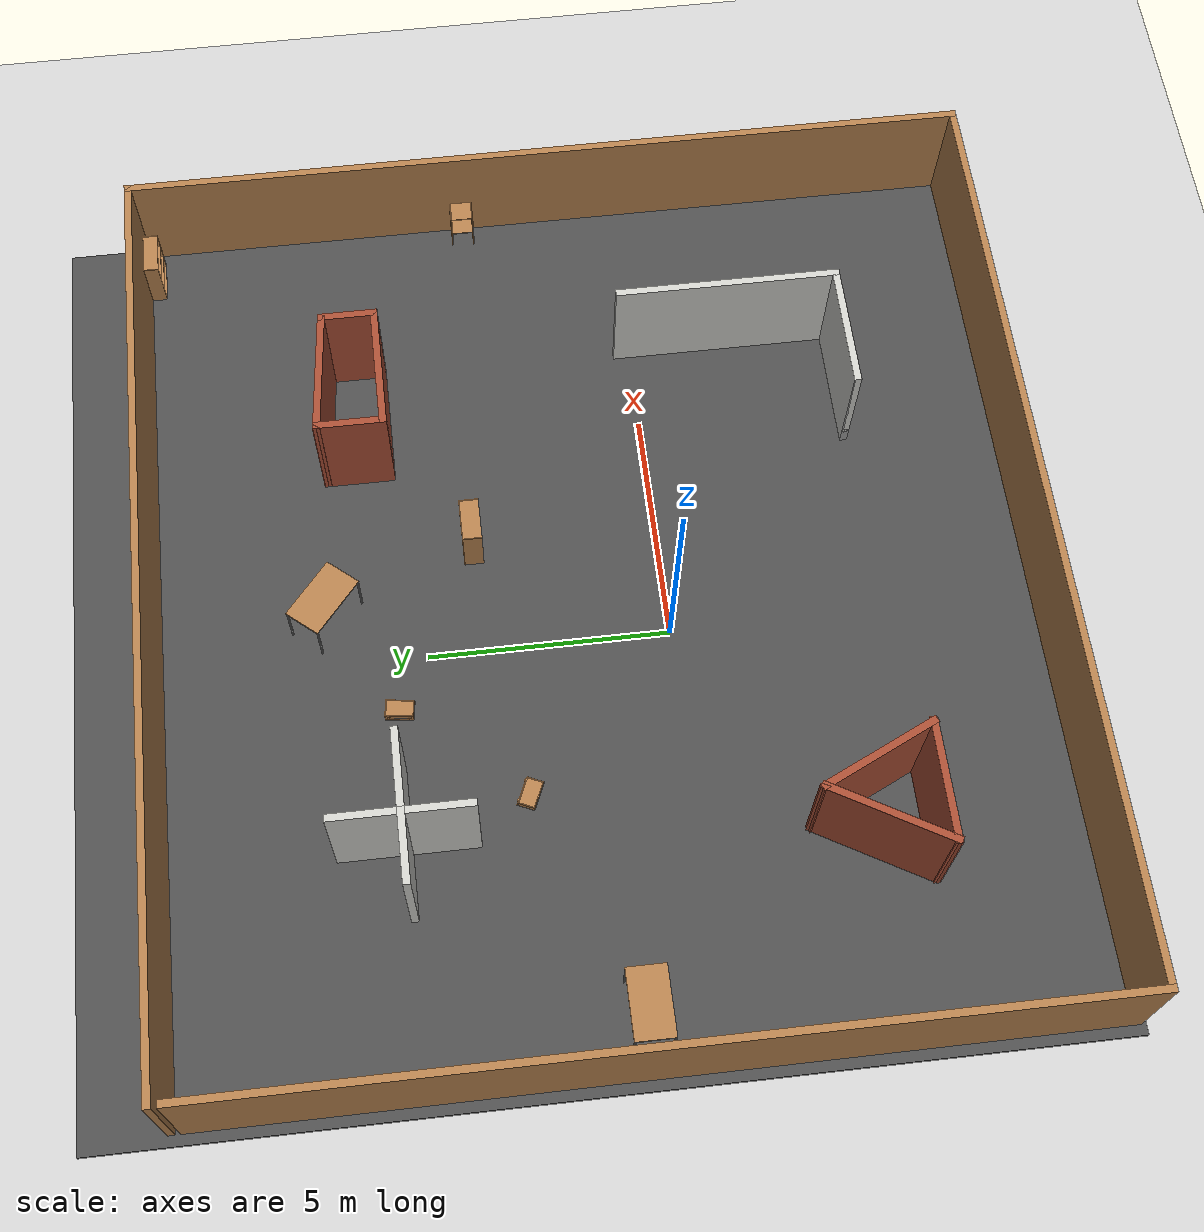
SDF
<sdf version="1.6">
 <world name="default">
  <light name="sun" type="directional">
   <pose>0 0 10 0 -0 0</pose>
   <diffuse>0.8 0.8 0.8 1</diffuse>
   <specular>0.1 0.1 0.1 1</specular>
   <attenuation>
    <range>1000</range>
    <constant>0.9</constant>
    <linear>0.01</linear>
    <quadratic>0.001</quadratic>
   </attenuation>
   <direction>-0.5 0.5 -1</direction>
  </light>
  <model name="ground_plane">
   <static>1</static>
   <link name="link">
    <collision name="collision">
     <geometry><plane><normal>0 0 1</normal><size>100 100</size></plane></geometry>
     <surface><friction><ode><mu>100</mu><mu2>50</mu2></ode></friction></surface>
    </collision>
    <visual name="visual">
     <cast_shadows>0</cast_shadows>
     <geometry><plane><normal>0 0 1</normal><size>100 100</size></plane></geometry>
     <material>
      <script><uri>file://media/materials/scripts/gazebo.material</uri><name>Gazebo/Grey</name></script>
     </material>
    </visual>
   </link>
  </model>
  <gravity>0 0 -9.8</gravity>
  <magnetic_field>6e-06 2.3e-05 -4.2e-05</magnetic_field>
  <atmosphere type="adiabatic"/>
  <physics name="default_physics" default="0" type="ode">
   <max_step_size>0.001</max_step_size>
   <real_time_factor>1</real_time_factor>
   <real_time_update_rate>1000</real_time_update_rate>
  </physics>
  <scene><ambient>0.4 0.4 0.4 1</ambient><background>0.7 0.7 0.7 1</background><shadows>1</shadows></scene>
  <spherical_coordinates>
   <surface_model>EARTH_WGS84</surface_model>
   <latitude_deg>0</latitude_deg>
   <longitude_deg>0</longitude_deg>
   <elevation>0</elevation>
   <heading_deg>0</heading_deg>
  </spherical_coordinates>
  <model name="box">
   <pose>0.85249 1.42589 0 0 -0 0</pose>
   <link name="Wall_10">
    <collision name="Wall_10_Collision">
     <geometry><box><size>2.63445 0.15 2.5</size></box></geometry>
     <pose>0 0 1.25 0 -0 0</pose>
    </collision>
    <visual name="Wall_10_Visual">
     <pose>0 0 1.25 0 -0 0</pose>
     <geometry><box><size>2.63445 0.15 2.5</size></box></geometry>
     <material>
      <script><uri>file://media/materials/scripts/gazebo.material</uri><name>Gazebo/Bricks</name></script>
      <ambient>1 1 1 1</ambient>
     </material>
    </visual>
    <pose>-4.83209 -4.71781 0 0 -0 2.00714</pose>
   </link>
   <link name="Wall_12">
    <collision name="Wall_12_Collision">
     <geometry><box><size>4.75 0.15 2.5</size></box></geometry>
     <pose>0 0 1.25 0 -0 0</pose>
    </collision>
    <visual name="Wall_12_Visual">
     <pose>0 0 1.25 0 -0 0</pose>
     <geometry><box><size>4.75 0.15 2.5</size></box></geometry>
     <material>
      <script><uri>file://media/materials/scripts/gazebo.material</uri><name>Gazebo/CeilingTiled</name></script>
      <ambient>1 1 1 1</ambient>
     </material>
    </visual>
    <pose>5.93001 -3.46465 0 0 0 -1.5708</pose>
   </link>
   <link name="Wall_13">
    <collision name="Wall_13_Collision">
     <geometry><box><size>2.75 0.15 2.5</size></box></geometry>
     <pose>0 0 1.25 0 -0 0</pose>
    </collision>
    <visual name="Wall_13_Visual">
     <pose>0 0 1.25 0 -0 0</pose>
     <geometry><box><size>2.75 0.15 2.5</size></box></geometry>
     <material>
      <script><uri>file://media/materials/scripts/gazebo.material</uri><name>Gazebo/CeilingTiled</name></script>
      <ambient>1 1 1 1</ambient>
     </material>
    </visual>
    <pose>4.63001 -5.76465 0 0 -0 3.14159</pose>
   </link>
   <link name="Wall_14">
    <collision name="Wall_14_Collision">
     <geometry><box><size>0.16 0.15 2.5</size></box></geometry>
     <pose>0 0 1.25 0 -0 0</pose>
    </collision>
    <visual name="Wall_14_Visual">
     <pose>0 0 1.25 0 -0 0</pose>
     <geometry><box><size>0.16 0.15 2.5</size></box></geometry>
     <material>
      <script><uri>file://media/materials/scripts/gazebo.material</uri><name>Gazebo/Grey</name></script>
      <ambient>1 1 1 1</ambient>
     </material>
    </visual>
    <pose>3.33501 -5.76465 0 0 -0 0</pose>
   </link>
   <link name="Wall_16">
    <collision name="Wall_16_Collision">
     <geometry><box><size>1.5 0.15 2.5</size></box></geometry>
     <pose>0 0 1.25 0 -0 0</pose>
    </collision>
    <visual name="Wall_16_Visual">
     <pose>0 0 1.25 0 -0 0</pose>
     <geometry><box><size>1.5 0.15 2.5</size></box></geometry>
     <material>
      <script><uri>file://media/materials/scripts/gazebo.material</uri><name>Gazebo/Bricks</name></script>
      <ambient>1 1 1 1</ambient>
     </material>
    </visual>
    <pose>3.42177 4.6737 0 0 0 -1.5708</pose>
   </link>
   <link name="Wall_17">
    <collision name="Wall_17_Collision">
     <geometry><box><size>2.75 0.15 2.5</size></box></geometry>
     <pose>0 0 1.25 0 -0 0</pose>
    </collision>
    <visual name="Wall_17_Visual">
     <pose>0 0 1.25 0 -0 0</pose>
     <geometry><box><size>2.75 0.15 2.5</size></box></geometry>
     <material>
      <script><uri>file://media/materials/scripts/gazebo.material</uri><name>Gazebo/Bricks</name></script>
      <ambient>1 1 1 1</ambient>
     </material>
    </visual>
    <pose>4.72177 3.9987 0 0 -0 0</pose>
   </link>
   <link name="Wall_18">
    <collision name="Wall_18_Collision">
     <geometry><box><size>1.25 0.15 2.5</size></box></geometry>
     <pose>0 0 1.25 0 -0 0</pose>
    </collision>
    <visual name="Wall_18_Visual">
     <pose>0 0 1.25 0 -0 0</pose>
     <geometry><box><size>1.25 0.15 2.5</size></box></geometry>
     <material>
      <script><uri>file://media/materials/scripts/gazebo.material</uri><name>Gazebo/Bricks</name></script>
      <ambient>1 1 1 1</ambient>
     </material>
    </visual>
    <pose>6.02177 4.5487 0 0 -0 1.5708</pose>
   </link>
   <link name="Wall_19">
    <collision name="Wall_19_Collision">
     <geometry><box><size>2.76199 0.15 2.5</size></box></geometry>
     <pose>0 0 1.25 0 -0 0</pose>
    </collision>
    <visual name="Wall_19_Visual">
     <pose>0 0 1.25 0 -0 0</pose>
     <geometry><box><size>2.76199 0.15 2.5</size></box></geometry>
     <material>
      <script><uri>file://media/materials/scripts/gazebo.material</uri><name>Gazebo/Bricks</name></script>
      <ambient>1 1 1 1</ambient>
     </material>
    </visual>
    <pose>4.72177 5.2237 0 0 -0 3.04573</pose>
   </link>
   <link name="Wall_21">
    <collision name="Wall_21_Collision">
     <geometry><box><size>1.5 0.15 2.5</size></box></geometry>
     <pose>0 0 1.25 0 -0 0</pose>
    </collision>
    <visual name="Wall_21_Visual">
     <pose>0 0 1.25 0 -0 0</pose>
     <geometry><box><size>1.5 0.15 2.5</size></box></geometry>
     <material>
      <script><uri>file://media/materials/scripts/gazebo.material</uri><name>Gazebo/CeilingTiled</name></script>
      <ambient>1 1 1 1</ambient>
     </material>
    </visual>
    <pose>-4.95254 4.95689 0 0 0 -1.5708</pose>
   </link>
   <link name="Wall_22">
    <collision name="Wall_22_Collision">
     <geometry><box><size>1.5 0.15 2.5</size></box></geometry>
     <pose>0 0 1.25 0 -0 0</pose>
    </collision>
    <visual name="Wall_22_Visual">
     <pose>0 0 1.25 0 -0 0</pose>
     <geometry><box><size>1.5 0.15 2.5</size></box></geometry>
     <material>
      <script><uri>file://media/materials/scripts/gazebo.material</uri><name>Gazebo/CeilingTiled</name></script>
      <ambient>1 1 1 1</ambient>
     </material>
    </visual>
    <pose>-5.62754 4.28189 0 0 -0 3.14159</pose>
   </link>
   <link name="Wall_24">
    <collision name="Wall_24_Collision">
     <geometry><box><size>1.5 0.15 2.5</size></box></geometry>
     <pose>0 0 1.25 0 -0 0</pose>
    </collision>
    <visual name="Wall_24_Visual">
     <pose>0 0 1.25 0 -0 0</pose>
     <geometry><box><size>1.5 0.15 2.5</size></box></geometry>
     <material>
      <script><uri>file://media/materials/scripts/gazebo.material</uri><name>Gazebo/CeilingTiled</name></script>
      <ambient>1 1 1 1</ambient>
     </material>
    </visual>
    <pose>-4.95254 3.60689 0 0 0 -1.5708</pose>
   </link>
   <link name="Wall_26">
    <collision name="Wall_26_Collision">
     <geometry><box><size>1.75 0.15 2.5</size></box></geometry>
     <pose>0 0 1.25 0 -0 0</pose>
    </collision>
    <visual name="Wall_26_Visual">
     <pose>0 0 1.25 0 -0 0</pose>
     <geometry><box><size>1.75 0.15 2.5</size></box></geometry>
     <material>
      <script><uri>file://media/materials/scripts/gazebo.material</uri><name>Gazebo/CeilingTiled</name></script>
      <ambient>1 1 1 1</ambient>
     </material>
    </visual>
    <pose>-4.15254 4.28189 0 0 -0 0</pose>
   </link>
   <link name="Wall_3">
    <collision name="Wall_3_Collision">
     <geometry><box><size>18 0.15 2.5</size></box></geometry>
     <pose>0 0 1.25 0 -0 0</pose>
    </collision>
    <visual name="Wall_3_Visual">
     <pose>0 0 1.25 0 -0 0</pose>
     <geometry><box><size>18 0.15 2.5</size></box></geometry>
     <material>
      <script><uri>file://media/materials/scripts/gazebo.material</uri><name>Gazebo/Wood</name></script>
      <ambient>1 1 1 1</ambient>
     </material>
    </visual>
    <pose>-9.8 -0.125 0 0 0 -1.5708</pose>
   </link>
   <link name="Wall_4">
    <collision name="Wall_4_Collision">
     <geometry><box><size>19.75 0.15 2.5</size></box></geometry>
     <pose>0 0 1.25 0 -0 0</pose>
    </collision>
    <visual name="Wall_4_Visual">
     <pose>0 0 1.25 0 -0 0</pose>
     <geometry><box><size>19.75 0.15 2.5</size></box></geometry>
     <material>
      <script><uri>file://media/materials/scripts/gazebo.material</uri><name>Gazebo/Wood</name></script>
      <ambient>1 1 1 1</ambient>
     </material>
    </visual>
    <pose>0 -9.05 0 0 -0 0</pose>
   </link>
   <link name="Wall_5">
    <collision name="Wall_5_Collision">
     <geometry><box><size>18.25 0.15 2.5</size></box></geometry>
     <pose>0 0 1.25 0 -0 0</pose>
    </collision>
    <visual name="Wall_5_Visual">
     <pose>0 0 1.25 0 -0 0</pose>
     <geometry><box><size>18.25 0.15 2.5</size></box></geometry>
     <material>
      <script><uri>file://media/materials/scripts/gazebo.material</uri><name>Gazebo/Wood</name></script>
      <ambient>1 1 1 1</ambient>
     </material>
    </visual>
    <pose>9.8 0 0 0 -0 1.5708</pose>
   </link>
   <link name="Wall_6">
    <collision name="Wall_6_Collision">
     <geometry><box><size>19.75 0.15 2.5</size></box></geometry>
     <pose>0 0 1.25 0 -0 0</pose>
    </collision>
    <visual name="Wall_6_Visual">
     <pose>0 0 1.25 0 -0 0</pose>
     <geometry><box><size>19.75 0.15 2.5</size></box></geometry>
     <material>
      <script><uri>file://media/materials/scripts/gazebo.material</uri><name>Gazebo/Wood</name></script>
      <ambient>1 1 1 1</ambient>
     </material>
    </visual>
    <pose>0 9.05 0 0 -0 3.14159</pose>
   </link>
   <link name="Wall_8">
    <collision name="Wall_8_Collision">
     <geometry><box><size>2.75 0.15 2.5</size></box></geometry>
     <pose>0 0 1.25 0 -0 0</pose>
    </collision>
    <visual name="Wall_8_Visual">
     <pose>0 0 1.25 0 -0 0</pose>
     <geometry><box><size>2.75 0.15 2.5</size></box></geometry>
     <material>
      <script><uri>file://media/materials/scripts/gazebo.material</uri><name>Gazebo/Bricks</name></script>
      <ambient>1 1 1 1</ambient>
     </material>
    </visual>
    <pose>-6.00709 -4.71781 0 0 0 -2.0944</pose>
   </link>
   <link name="Wall_9">
    <collision name="Wall_9_Collision">
     <geometry><box><size>2.5 0.15 2.5</size></box></geometry>
     <pose>0 0 1.25 0 -0 0</pose>
    </collision>
    <visual name="Wall_9_Visual">
     <pose>0 0 1.25 0 -0 0</pose>
     <geometry><box><size>2.5 0.15 2.5</size></box></geometry>
     <material>
      <script><uri>file://media/materials/scripts/gazebo.material</uri><name>Gazebo/Bricks</name></script>
      <ambient>1 1 1 1</ambient>
     </material>
    </visual>
    <pose>-5.48209 -5.84365 0 0 -0 0</pose>
   </link>
   <static>1</static>
  </model>
  <model name="asphalt_plane">
   <static>1</static>
   <link name="link">
    <collision name="collision"><geometry><box><size>20 20 0.1</size></box></geometry></collision>
    <visual name="visual">
     <cast_shadows>0</cast_shadows>
     <geometry><box><size>20 20 0.1</size></box></geometry>
     <material>
      <script>
       <uri>model://asphalt_plane/materials/scripts</uri>
       <uri>model://asphalt_plane/materials/textures</uri>
       <name>vrc/asphalt</name>
      </script>
     </material>
    </visual>
   </link>
   <pose>0.765747 2.20895 0 0 -0 0</pose>
  </model>
  <model name="table">
   <static>0</static>
   <link name="link">
    <collision name="surface">
     <pose>0 0 1 0 -0 0</pose>
     <geometry><box><size>1.5 0.8 0.03</size></box></geometry>
     <surface><friction><ode><mu>0.6</mu><mu2>0.6</mu2></ode></friction></surface>
    </collision>
    <visual name="visual1">
     <pose>0 0 1 0 -0 0</pose>
     <geometry><box><size>1.4 0.8 0.04</size></box></geometry>
     <material>
      <script><uri>file://media/materials/scripts/gazebo.material</uri><name>Gazebo/Wood</name></script>
     </material>
    </visual>
    <collision name="front_left_leg">
     <pose>0.68 0.38 0.5 0 -0 0</pose>
     <geometry><cylinder><radius>0.02</radius><length>1</length></cylinder></geometry>
    </collision>
    <visual name="front_left_leg">
     <pose>0.68 0.38 0.5 0 -0 0</pose>
     <geometry><cylinder><radius>0.02</radius><length>1</length></cylinder></geometry>
     <material>
      <script><uri>file://media/materials/scripts/gazebo.material</uri><name>Gazebo/Grey</name></script>
     </material>
    </visual>
    <collision name="front_right_leg">
     <pose>0.68 -0.38 0.5 0 -0 0</pose>
     <geometry><cylinder><radius>0.02</radius><length>1</length></cylinder></geometry>
    </collision>
    <visual name="front_right_leg">
     <pose>0.68 -0.38 0.5 0 -0 0</pose>
     <geometry><cylinder><radius>0.02</radius><length>1</length></cylinder></geometry>
     <material>
      <script><uri>file://media/materials/scripts/gazebo.material</uri><name>Gazebo/Grey</name></script>
     </material>
    </visual>
    <collision name="back_right_leg">
     <pose>-0.68 -0.38 0.5 0 -0 0</pose>
     <geometry><cylinder><radius>0.02</radius><length>1</length></cylinder></geometry>
    </collision>
    <visual name="back_right_leg">
     <pose>-0.68 -0.38 0.5 0 -0 0</pose>
     <geometry><cylinder><radius>0.02</radius><length>1</length></cylinder></geometry>
     <material>
      <script><uri>file://media/materials/scripts/gazebo.material</uri><name>Gazebo/Grey</name></script>
     </material>
    </visual>
    <collision name="back_left_leg">
     <pose>-0.68 0.38 0.5 0 -0 0</pose>
     <geometry><cylinder><radius>0.02</radius><length>1</length></cylinder></geometry>
    </collision>
    <visual name="back_left_leg">
     <pose>-0.68 0.38 0.5 0 -0 0</pose>
     <geometry><cylinder><radius>0.02</radius><length>1</length></cylinder></geometry>
     <material>
      <script><uri>file://media/materials/scripts/gazebo.material</uri><name>Gazebo/Grey</name></script>
     </material>
    </visual>
    <inertial>
     <inertia><ixx>1</ixx><ixy>0</ixy><ixz>0</ixz><iyy>1</iyy><iyz>0</iyz><izz>1</izz></inertia>
     <mass>1</mass>
    </inertial>
   </link>
   <pose>-7.81067 1.48685 0.049995 -2e-06 4e-06 0</pose>
  </model>
  <model name="cabinet">
   <static>1</static>
   <link name="cabinet_bottom_plate">
    <inertial>
     <pose>0 0 -1 0 -0 0</pose>
     <inertia><ixx>2.05</ixx><ixy>0</ixy><ixz>0</ixz><iyy>2.05</iyy><iyz>0</iyz><izz>2.05</izz></inertia>
     <mass>25</mass>
    </inertial>
    <collision name="cabinet_bottom_plate_geom">
     <pose>0 0 0.01 0 -0 0</pose>
     <geometry><box><size>0.45 0.45 0.02</size></box></geometry>
    </collision>
    <visual name="cabinet_bottom_plate_geom_visual">
     <pose>0 0 0.01 0 -0 0</pose>
     <geometry><box><size>0.45 0.45 0.02</size></box></geometry>
     <material>
      <script><uri>file://media/materials/scripts/gazebo.material</uri><name>Gazebo/Wood</name></script>
     </material>
    </visual>
    <collision name="cabinet_bottom_plate_geom_cabinet_back_plate">
     <pose>0.235 0 0.51 0 -0 0</pose>
     <geometry><box><size>0.02 0.45 1.02</size></box></geometry>
    </collision>
    <visual name="cabinet_bottom_plate_geom_cabinet_back_plate_visual">
     <pose>0.235 0 0.51 0 -0 0</pose>
     <geometry><box><size>0.02 0.45 1.02</size></box></geometry>
     <material>
      <script><uri>file://media/materials/scripts/gazebo.material</uri><name>Gazebo/Wood</name></script>
     </material>
    </visual>
    <collision name="cabinet_bottom_plate_geom_cabinet_left_plate">
     <pose>0 0.235 0.51 0 -0 0</pose>
     <geometry><box><size>0.45 0.02 1.02</size></box></geometry>
    </collision>
    <visual name="cabinet_bottom_plate_geom_cabinet_left_plate_visual">
     <pose>0 0.235 0.51 0 -0 0</pose>
     <geometry><box><size>0.45 0.02 1.02</size></box></geometry>
     <material>
      <script><uri>file://media/materials/scripts/gazebo.material</uri><name>Gazebo/Wood</name></script>
     </material>
    </visual>
    <collision name="cabinet_bottom_plate_geom_cabinet_middle_plate">
     <pose>0 0 0.51 0 -0 0</pose>
     <geometry><box><size>0.45 0.45 0.02</size></box></geometry>
    </collision>
    <visual name="cabinet_bottom_plate_geom_cabinet_middle_plate_visual">
     <pose>0 0 0.51 0 -0 0</pose>
     <geometry><box><size>0.45 0.45 0.02</size></box></geometry>
     <material>
      <script><uri>file://media/materials/scripts/gazebo.material</uri><name>Gazebo/Wood</name></script>
     </material>
    </visual>
    <collision name="cabinet_bottom_plate_geom_cabinet_right_plate">
     <pose>0 -0.235 0.51 0 -0 0</pose>
     <geometry><box><size>0.45 0.02 1.02</size></box></geometry>
    </collision>
    <visual name="cabinet_bottom_plate_geom_cabinet_right_plate_visual">
     <pose>0 -0.235 0.51 0 -0 0</pose>
     <geometry><box><size>0.45 0.02 1.02</size></box></geometry>
     <material>
      <script><uri>file://media/materials/scripts/gazebo.material</uri><name>Gazebo/Wood</name></script>
     </material>
    </visual>
    <collision name="cabinet_bottom_plate_geom_cabinet_top_plate">
     <pose>0 0 1.01 0 -0 0</pose>
     <geometry><box><size>0.45 0.45 0.02</size></box></geometry>
    </collision>
    <visual name="cabinet_bottom_plate_geom_cabinet_top_plate_visual">
     <pose>0 0 1.01 0 -0 0</pose>
     <geometry><box><size>0.45 0.45 0.02</size></box></geometry>
     <material>
      <script><uri>file://media/materials/scripts/gazebo.material</uri><name>Gazebo/Wood</name></script>
     </material>
    </visual>
   </link>
   <pose>10.3466 3.34573 0 0 -0 0</pose>
  </model>
  <model name="bookshelf">
   <static>1</static>
   <link name="link">
    <inertial><mass>1</mass></inertial>
    <collision name="back">
     <pose>0 0.005 0.6 0 -0 0</pose>
     <geometry><box><size>0.9 0.01 1.2</size></box></geometry>
    </collision>
    <visual name="visual1">
     <pose>0 0.005 0.6 0 -0 0</pose>
     <geometry><box><size>0.9 0.01 1.2</size></box></geometry>
     <material>
      <script><uri>file://media/materials/scripts/gazebo.material</uri><name>Gazebo/Wood</name></script>
     </material>
    </visual>
    <collision name="left_side">
     <pose>0.45 -0.195 0.6 0 -0 0</pose>
     <geometry><box><size>0.02 0.4 1.2</size></box></geometry>
    </collision>
    <visual name="visual2">
     <pose>0.45 -0.195 0.6 0 -0 0</pose>
     <geometry><box><size>0.02 0.4 1.2</size></box></geometry>
     <material>
      <script><uri>file://media/materials/scripts/gazebo.material</uri><name>Gazebo/Wood</name></script>
     </material>
    </visual>
    <collision name="right_side">
     <pose>-0.45 -0.195 0.6 0 -0 0</pose>
     <geometry><box><size>0.02 0.4 1.2</size></box></geometry>
    </collision>
    <visual name="visual3">
     <pose>-0.45 -0.195 0.6 0 -0 0</pose>
     <geometry><box><size>0.02 0.4 1.2</size></box></geometry>
     <material>
      <script><uri>file://media/materials/scripts/gazebo.material</uri><name>Gazebo/Wood</name></script>
     </material>
    </visual>
    <collision name="bottom">
     <pose>0 -0.195 0.03 0 -0 0</pose>
     <geometry><box><size>0.88 0.4 0.06</size></box></geometry>
    </collision>
    <visual name="visual4">
     <pose>0 -0.195 0.03 0 -0 0</pose>
     <geometry><box><size>0.88 0.4 0.06</size></box></geometry>
     <material>
      <script><uri>file://media/materials/scripts/gazebo.material</uri><name>Gazebo/Wood</name></script>
     </material>
    </visual>
    <collision name="top">
     <pose>0 -0.195 1.19 0 -0 0</pose>
     <geometry><box><size>0.88 0.4 0.02</size></box></geometry>
    </collision>
    <visual name="visual5">
     <pose>0 -0.195 1.19 0 -0 0</pose>
     <geometry><box><size>0.88 0.4 0.02</size></box></geometry>
     <material>
      <script><uri>file://media/materials/scripts/gazebo.material</uri><name>Gazebo/Wood</name></script>
     </material>
    </visual>
    <collision name="low_shelf">
     <pose>0 -0.195 0.43 0 -0 0</pose>
     <geometry><box><size>0.88 0.4 0.02</size></box></geometry>
    </collision>
    <visual name="visual6">
     <pose>0 -0.195 0.43 0 -0 0</pose>
     <geometry><box><size>0.88 0.4 0.02</size></box></geometry>
     <material>
      <script><uri>file://media/materials/scripts/gazebo.material</uri><name>Gazebo/Wood</name></script>
     </material>
    </visual>
    <collision name="high_shelf">
     <pose>0 -0.195 0.8 0 -0 0</pose>
     <geometry><box><size>0.88 0.4 0.02</size></box></geometry>
    </collision>
    <visual name="visual7">
     <pose>0 -0.195 0.8 0 -0 0</pose>
     <geometry><box><size>0.88 0.4 0.02</size></box></geometry>
     <material>
      <script><uri>file://media/materials/scripts/gazebo.material</uri><name>Gazebo/Wood</name></script>
     </material>
    </visual>
   </link>
   <pose>9.85601 10.481 0 0 -0 0</pose>
  </model>
  <model name="bookshelf_0">
   <static>1</static>
   <link name="link">
    <inertial><mass>1</mass></inertial>
    <collision name="back">
     <pose>0 0.005 0.6 0 -0 0</pose>
     <geometry><box><size>0.9 0.01 1.2</size></box></geometry>
    </collision>
    <visual name="visual1">
     <pose>0 0.005 0.6 0 -0 0</pose>
     <geometry><box><size>0.9 0.01 1.2</size></box></geometry>
     <material>
      <script><uri>file://media/materials/scripts/gazebo.material</uri><name>Gazebo/Wood</name></script>
     </material>
    </visual>
    <collision name="left_side">
     <pose>0.45 -0.195 0.6 0 -0 0</pose>
     <geometry><box><size>0.02 0.4 1.2</size></box></geometry>
    </collision>
    <visual name="visual2">
     <pose>0.45 -0.195 0.6 0 -0 0</pose>
     <geometry><box><size>0.02 0.4 1.2</size></box></geometry>
     <material>
      <script><uri>file://media/materials/scripts/gazebo.material</uri><name>Gazebo/Wood</name></script>
     </material>
    </visual>
    <collision name="right_side">
     <pose>-0.45 -0.195 0.6 0 -0 0</pose>
     <geometry><box><size>0.02 0.4 1.2</size></box></geometry>
    </collision>
    <visual name="visual3">
     <pose>-0.45 -0.195 0.6 0 -0 0</pose>
     <geometry><box><size>0.02 0.4 1.2</size></box></geometry>
     <material>
      <script><uri>file://media/materials/scripts/gazebo.material</uri><name>Gazebo/Wood</name></script>
     </material>
    </visual>
    <collision name="bottom">
     <pose>0 -0.195 0.03 0 -0 0</pose>
     <geometry><box><size>0.88 0.4 0.06</size></box></geometry>
    </collision>
    <visual name="visual4">
     <pose>0 -0.195 0.03 0 -0 0</pose>
     <geometry><box><size>0.88 0.4 0.06</size></box></geometry>
     <material>
      <script><uri>file://media/materials/scripts/gazebo.material</uri><name>Gazebo/Wood</name></script>
     </material>
    </visual>
    <collision name="top">
     <pose>0 -0.195 1.19 0 -0 0</pose>
     <geometry><box><size>0.88 0.4 0.02</size></box></geometry>
    </collision>
    <visual name="visual5">
     <pose>0 -0.195 1.19 0 -0 0</pose>
     <geometry><box><size>0.88 0.4 0.02</size></box></geometry>
     <material>
      <script><uri>file://media/materials/scripts/gazebo.material</uri><name>Gazebo/Wood</name></script>
     </material>
    </visual>
    <collision name="low_shelf">
     <pose>0 -0.195 0.43 0 -0 0</pose>
     <geometry><box><size>0.88 0.4 0.02</size></box></geometry>
    </collision>
    <visual name="visual6">
     <pose>0 -0.195 0.43 0 -0 0</pose>
     <geometry><box><size>0.88 0.4 0.02</size></box></geometry>
     <material>
      <script><uri>file://media/materials/scripts/gazebo.material</uri><name>Gazebo/Wood</name></script>
     </material>
    </visual>
    <collision name="high_shelf">
     <pose>0 -0.195 0.8 0 -0 0</pose>
     <geometry><box><size>0.88 0.4 0.02</size></box></geometry>
    </collision>
    <visual name="visual7">
     <pose>0 -0.195 0.8 0 -0 0</pose>
     <geometry><box><size>0.88 0.4 0.02</size></box></geometry>
     <material>
      <script><uri>file://media/materials/scripts/gazebo.material</uri><name>Gazebo/Wood</name></script>
     </material>
    </visual>
   </link>
   <pose>2.47329 4.05262 0 0 -0 0</pose>
  </model>
  <model name="wooden_case">
   <link name="base">
    <pose>0 0 0.024 0 -0 0</pose>
    <inertial>
     <pose>-0.022184 0 0.171592 0 -0 0</pose>
     <mass>3.96264</mass>
     <inertia>
      <ixx>0.213536</ixx>
      <ixy>0</ixy>
      <ixz>0.000779377</ixz>
      <iyy>0.0708943</iyy>
      <iyz>0</iyz>
      <izz>0.154604</izz>
     </inertia>
    </inertial>
    <collision name="collision_back">
     <pose>-0.053975 0 0.1778 0 -0 0</pose>
     <geometry><box><size>0.01905 0.5461 0.3175</size></box></geometry>
     <surface>
      <contact>
       <poissons_ratio>0.347</poissons_ratio>
       <elastic_modulus>8.8e+09</elastic_modulus>
       <ode><kp>100000</kp><kd>100</kd><max_vel>100</max_vel><min_depth>0.001</min_depth></ode>
      </contact>
      <friction>
       <torsional>
        <coefficient>1</coefficient>
        <use_patch_radius>0</use_patch_radius>
        <surface_radius>0.01</surface_radius>
       </torsional>
      </friction>
     </surface>
    </collision>
    <visual name="visual_back">
     <pose>-0.053975 0 0.1778 0 -0 0</pose>
     <geometry><box><size>0.01905 0.5461 0.3175</size></box></geometry>
     <material>
      <script><uri>file://media/materials/scripts/gazebo.material</uri><name>Gazebo/Wood</name></script>
     </material>
    </visual>
    <collision name="collision_bottom">
     <pose>0 0 0.009525 0 -0 0</pose>
     <geometry><box><size>0.127 0.5842 0.01905</size></box></geometry>
     <surface>
      <contact>
       <poissons_ratio>0.347</poissons_ratio>
       <elastic_modulus>8.8e+09</elastic_modulus>
       <ode><kp>100000</kp><kd>100</kd><max_vel>100</max_vel><min_depth>0.001</min_depth></ode>
      </contact>
      <friction>
       <torsional>
        <coefficient>1</coefficient>
        <use_patch_radius>0</use_patch_radius>
        <surface_radius>0.01</surface_radius>
       </torsional>
      </friction>
     </surface>
    </collision>
    <visual name="visual_bottom">
     <pose>0 0 0.009525 0 -0 0</pose>
     <geometry><box><size>0.127 0.5842 0.01905</size></box></geometry>
     <material>
      <script><uri>file://media/materials/scripts/gazebo.material</uri><name>Gazebo/Wood</name></script>
     </material>
    </visual>
    <collision name="collision_top">
     <pose>0 0 0.346075 0 -0 0</pose>
     <geometry><box><size>0.127 0.5842 0.01905</size></box></geometry>
     <surface>
      <contact>
       <poissons_ratio>0.347</poissons_ratio>
       <elastic_modulus>8.8e+09</elastic_modulus>
       <ode><kp>100000</kp><kd>100</kd><max_vel>100</max_vel><min_depth>0.001</min_depth></ode>
      </contact>
      <friction>
       <torsional>
        <coefficient>1</coefficient>
        <use_patch_radius>0</use_patch_radius>
        <surface_radius>0.01</surface_radius>
       </torsional>
      </friction>
     </surface>
    </collision>
    <visual name="visual_top">
     <pose>0 0 0.346075 0 -0 0</pose>
     <geometry><box><size>0.127 0.5842 0.01905</size></box></geometry>
     <material>
      <script><uri>file://media/materials/scripts/gazebo.material</uri><name>Gazebo/Wood</name></script>
     </material>
    </visual>
    <collision name="collision_left">
     <pose>0 -0.282575 0.1778 0 -0 0</pose>
     <geometry><box><size>0.127 0.01905 0.3175</size></box></geometry>
     <surface>
      <contact>
       <poissons_ratio>0.347</poissons_ratio>
       <elastic_modulus>8.8e+09</elastic_modulus>
       <ode><kp>100000</kp><kd>100</kd><max_vel>100</max_vel><min_depth>0.001</min_depth></ode>
      </contact>
      <friction>
       <torsional>
        <coefficient>1</coefficient>
        <use_patch_radius>0</use_patch_radius>
        <surface_radius>0.01</surface_radius>
       </torsional>
      </friction>
     </surface>
    </collision>
    <visual name="visual_left">
     <pose>0 -0.282575 0.1778 0 -0 0</pose>
     <geometry><box><size>0.127 0.01905 0.3175</size></box></geometry>
     <material>
      <script><uri>file://media/materials/scripts/gazebo.material</uri><name>Gazebo/Wood</name></script>
     </material>
    </visual>
    <collision name="collision_right">
     <pose>0 0.282575 0.1778 0 -0 0</pose>
     <geometry><box><size>0.127 0.01905 0.3175</size></box></geometry>
     <surface>
      <contact>
       <poissons_ratio>0.347</poissons_ratio>
       <elastic_modulus>8.8e+09</elastic_modulus>
       <ode><kp>100000</kp><kd>100</kd><max_vel>100</max_vel><min_depth>0.001</min_depth></ode>
      </contact>
      <friction>
       <torsional>
        <coefficient>1</coefficient>
        <use_patch_radius>0</use_patch_radius>
        <surface_radius>0.01</surface_radius>
       </torsional>
      </friction>
     </surface>
    </collision>
    <visual name="visual_right">
     <pose>0 0.282575 0.1778 0 -0 0</pose>
     <geometry><box><size>0.127 0.01905 0.3175</size></box></geometry>
     <material>
      <script><uri>file://media/materials/scripts/gazebo.material</uri><name>Gazebo/Wood</name></script>
     </material>
    </visual>
    <collision name="collision_block_left">
     <pose>0.0095 -0.2151 -0.012 0 -0 0</pose>
     <geometry><box><size>0.108 0.05 0.024</size></box></geometry>
     <surface>
      <contact>
       <poissons_ratio>0.347</poissons_ratio>
       <elastic_modulus>8.8e+09</elastic_modulus>
       <ode><kp>100000</kp><kd>100</kd><max_vel>100</max_vel><min_depth>0.001</min_depth></ode>
      </contact>
      <friction>
       <torsional>
        <coefficient>1</coefficient>
        <use_patch_radius>0</use_patch_radius>
        <surface_radius>0.01</surface_radius>
       </torsional>
      </friction>
     </surface>
    </collision>
    <visual name="visual_block_left">
     <pose>0.0095 -0.2151 -0.012 0 -0 0</pose>
     <geometry><box><size>0.108 0.05 0.024</size></box></geometry>
     <material>
      <script><uri>file://media/materials/scripts/gazebo.material</uri><name>Gazebo/Wood</name></script>
     </material>
    </visual>
    <collision name="collision_block_right">
     <pose>0.0095 0.2151 -0.012 0 -0 0</pose>
     <geometry><box><size>0.108 0.05 0.024</size></box></geometry>
     <surface>
      <contact>
       <poissons_ratio>0.347</poissons_ratio>
       <elastic_modulus>8.8e+09</elastic_modulus>
       <ode><kp>100000</kp><kd>100</kd><max_vel>100</max_vel><min_depth>0.001</min_depth></ode>
      </contact>
      <friction>
       <torsional>
        <coefficient>1</coefficient>
        <use_patch_radius>0</use_patch_radius>
        <surface_radius>0.01</surface_radius>
       </torsional>
      </friction>
     </surface>
    </collision>
    <visual name="visual_block_right">
     <pose>0.0095 0.2151 -0.012 0 -0 0</pose>
     <geometry><box><size>0.108 0.05 0.024</size></box></geometry>
     <material>
      <script><uri>file://media/materials/scripts/gazebo.material</uri><name>Gazebo/Wood</name></script>
     </material>
    </visual>
   </link>
   <link name="lid">
    <pose>0.243775 0 0.009525 0 -0 0</pose>
    <inertial>
     <mass>1.97874</mass>
     <inertia>
      <ixx>0.0563367</ixx>
      <ixy>0</ixy>
      <ixz>0</ixz>
      <iyy>0.020911</iyy>
      <iyz>0</iyz>
      <izz>0.0771281</izz>
     </inertia>
    </inertial>
    <collision name="collision">
     <geometry><box><size>0.3556 0.5842 0.01905</size></box></geometry>
     <surface>
      <contact>
       <poissons_ratio>0.347</poissons_ratio>
       <elastic_modulus>8.8e+09</elastic_modulus>
       <ode><kp>100000</kp><kd>100</kd><max_vel>100</max_vel><min_depth>0.001</min_depth></ode>
      </contact>
      <friction>
       <torsional>
        <coefficient>1</coefficient>
        <use_patch_radius>0</use_patch_radius>
        <surface_radius>0.01</surface_radius>
       </torsional>
      </friction>
     </surface>
    </collision>
    <visual name="visual">
     <geometry><box><size>0.3556 0.5842 0.01905</size></box></geometry>
     <material>
      <script><uri>file://media/materials/scripts/gazebo.material</uri><name>Gazebo/Wood</name></script>
     </material>
    </visual>
    <visual name="tee_nut_1">
     <pose>0.122 -0.216 0 0 -0 0</pose>
     <geometry><cylinder><radius>0.00635</radius><length>0.0192405</length></cylinder></geometry>
     <material>
      <script><uri>file://media/materials/scripts/gazebo.material</uri><name>Gazebo/Grey</name></script>
     </material>
    </visual>
    <visual name="tee_nut_2">
     <pose>0.122 -0.088 0 0 -0 0</pose>
     <geometry><cylinder><radius>0.00635</radius><length>0.0192405</length></cylinder></geometry>
     <material>
      <script><uri>file://media/materials/scripts/gazebo.material</uri><name>Gazebo/Grey</name></script>
     </material>
    </visual>
    <visual name="tee_nut_3">
     <pose>0.122 0.088 0 0 -0 0</pose>
     <geometry><cylinder><radius>0.00635</radius><length>0.0192405</length></cylinder></geometry>
     <material>
      <script><uri>file://media/materials/scripts/gazebo.material</uri><name>Gazebo/Grey</name></script>
     </material>
    </visual>
    <visual name="tee_nut_4">
     <pose>0.122 0.216 0 0 -0 0</pose>
     <geometry><cylinder><radius>0.00635</radius><length>0.0192405</length></cylinder></geometry>
     <material>
      <script><uri>file://media/materials/scripts/gazebo.material</uri><name>Gazebo/Grey</name></script>
     </material>
    </visual>
   </link>
   <joint name="lid_hinge" type="revolute">
    <pose>-0.1778 0 0.01905 0 -0 0</pose>
    <parent>base</parent>
    <child>lid</child>
    <axis>
     <xyz>0 1 0</xyz>
     <limit><upper>0.523599</upper><lower>-1.5708</lower></limit>
     <use_parent_model_frame>0</use_parent_model_frame>
     <dynamics><spring_reference>0</spring_reference><spring_stiffness>0</spring_stiffness></dynamics>
    </axis>
   </joint>
   <pose>-1.32492 5.6908 0.143399 0 1.57077 -0.135909</pose>
  </model>
  <model name="table_0">
   <static>0</static>
   <link name="link">
    <collision name="surface">
     <pose>0 0 1 0 -0 0</pose>
     <geometry><box><size>1.5 0.8 0.03</size></box></geometry>
     <surface><friction><ode><mu>0.6</mu><mu2>0.6</mu2></ode></friction></surface>
    </collision>
    <visual name="visual1">
     <pose>0 0 1 0 -0 0</pose>
     <geometry><box><size>1.4 0.8 0.04</size></box></geometry>
     <material>
      <script><uri>file://media/materials/scripts/gazebo.material</uri><name>Gazebo/Wood</name></script>
     </material>
    </visual>
    <collision name="front_left_leg">
     <pose>0.68 0.38 0.5 0 -0 0</pose>
     <geometry><cylinder><radius>0.02</radius><length>1</length></cylinder></geometry>
    </collision>
    <visual name="front_left_leg">
     <pose>0.68 0.38 0.5 0 -0 0</pose>
     <geometry><cylinder><radius>0.02</radius><length>1</length></cylinder></geometry>
     <material>
      <script><uri>file://media/materials/scripts/gazebo.material</uri><name>Gazebo/Grey</name></script>
     </material>
    </visual>
    <collision name="front_right_leg">
     <pose>0.68 -0.38 0.5 0 -0 0</pose>
     <geometry><cylinder><radius>0.02</radius><length>1</length></cylinder></geometry>
    </collision>
    <visual name="front_right_leg">
     <pose>0.68 -0.38 0.5 0 -0 0</pose>
     <geometry><cylinder><radius>0.02</radius><length>1</length></cylinder></geometry>
     <material>
      <script><uri>file://media/materials/scripts/gazebo.material</uri><name>Gazebo/Grey</name></script>
     </material>
    </visual>
    <collision name="back_right_leg">
     <pose>-0.68 -0.38 0.5 0 -0 0</pose>
     <geometry><cylinder><radius>0.02</radius><length>1</length></cylinder></geometry>
    </collision>
    <visual name="back_right_leg">
     <pose>-0.68 -0.38 0.5 0 -0 0</pose>
     <geometry><cylinder><radius>0.02</radius><length>1</length></cylinder></geometry>
     <material>
      <script><uri>file://media/materials/scripts/gazebo.material</uri><name>Gazebo/Grey</name></script>
     </material>
    </visual>
    <collision name="back_left_leg">
     <pose>-0.68 0.38 0.5 0 -0 0</pose>
     <geometry><cylinder><radius>0.02</radius><length>1</length></cylinder></geometry>
    </collision>
    <visual name="back_left_leg">
     <pose>-0.68 0.38 0.5 0 -0 0</pose>
     <geometry><cylinder><radius>0.02</radius><length>1</length></cylinder></geometry>
     <material>
      <script><uri>file://media/materials/scripts/gazebo.material</uri><name>Gazebo/Grey</name></script>
     </material>
    </visual>
    <inertial>
     <inertia><ixx>1</ixx><ixy>0</ixy><ixz>0</ixz><iyy>1</iyy><iyz>0</iyz><izz>1</izz></inertia>
     <mass>1</mass>
    </inertial>
   </link>
   <pose>1.09719 6.99324 0.049993 0 0 -0.698803</pose>
  </model>
  <model name="wooden_case_0">
   <link name="base">
    <pose>0 0 0.024 0 -0 0</pose>
    <inertial>
     <pose>-0.022184 0 0.171592 0 -0 0</pose>
     <mass>3.96264</mass>
     <inertia>
      <ixx>0.213536</ixx>
      <ixy>0</ixy>
      <ixz>0.000779377</ixz>
      <iyy>0.0708943</iyy>
      <iyz>0</iyz>
      <izz>0.154604</izz>
     </inertia>
    </inertial>
    <collision name="collision_back">
     <pose>-0.053975 0 0.1778 0 -0 0</pose>
     <geometry><box><size>0.01905 0.5461 0.3175</size></box></geometry>
     <surface>
      <contact>
       <poissons_ratio>0.347</poissons_ratio>
       <elastic_modulus>8.8e+09</elastic_modulus>
       <ode><kp>100000</kp><kd>100</kd><max_vel>100</max_vel><min_depth>0.001</min_depth></ode>
      </contact>
      <friction>
       <torsional>
        <coefficient>1</coefficient>
        <use_patch_radius>0</use_patch_radius>
        <surface_radius>0.01</surface_radius>
       </torsional>
      </friction>
     </surface>
    </collision>
    <visual name="visual_back">
     <pose>-0.053975 0 0.1778 0 -0 0</pose>
     <geometry><box><size>0.01905 0.5461 0.3175</size></box></geometry>
     <material>
      <script><uri>file://media/materials/scripts/gazebo.material</uri><name>Gazebo/Wood</name></script>
     </material>
    </visual>
    <collision name="collision_bottom">
     <pose>0 0 0.009525 0 -0 0</pose>
     <geometry><box><size>0.127 0.5842 0.01905</size></box></geometry>
     <surface>
      <contact>
       <poissons_ratio>0.347</poissons_ratio>
       <elastic_modulus>8.8e+09</elastic_modulus>
       <ode><kp>100000</kp><kd>100</kd><max_vel>100</max_vel><min_depth>0.001</min_depth></ode>
      </contact>
      <friction>
       <torsional>
        <coefficient>1</coefficient>
        <use_patch_radius>0</use_patch_radius>
        <surface_radius>0.01</surface_radius>
       </torsional>
      </friction>
     </surface>
    </collision>
    <visual name="visual_bottom">
     <pose>0 0 0.009525 0 -0 0</pose>
     <geometry><box><size>0.127 0.5842 0.01905</size></box></geometry>
     <material>
      <script><uri>file://media/materials/scripts/gazebo.material</uri><name>Gazebo/Wood</name></script>
     </material>
    </visual>
    <collision name="collision_top">
     <pose>0 0 0.346075 0 -0 0</pose>
     <geometry><box><size>0.127 0.5842 0.01905</size></box></geometry>
     <surface>
      <contact>
       <poissons_ratio>0.347</poissons_ratio>
       <elastic_modulus>8.8e+09</elastic_modulus>
       <ode><kp>100000</kp><kd>100</kd><max_vel>100</max_vel><min_depth>0.001</min_depth></ode>
      </contact>
      <friction>
       <torsional>
        <coefficient>1</coefficient>
        <use_patch_radius>0</use_patch_radius>
        <surface_radius>0.01</surface_radius>
       </torsional>
      </friction>
     </surface>
    </collision>
    <visual name="visual_top">
     <pose>0 0 0.346075 0 -0 0</pose>
     <geometry><box><size>0.127 0.5842 0.01905</size></box></geometry>
     <material>
      <script><uri>file://media/materials/scripts/gazebo.material</uri><name>Gazebo/Wood</name></script>
     </material>
    </visual>
    <collision name="collision_left">
     <pose>0 -0.282575 0.1778 0 -0 0</pose>
     <geometry><box><size>0.127 0.01905 0.3175</size></box></geometry>
     <surface>
      <contact>
       <poissons_ratio>0.347</poissons_ratio>
       <elastic_modulus>8.8e+09</elastic_modulus>
       <ode><kp>100000</kp><kd>100</kd><max_vel>100</max_vel><min_depth>0.001</min_depth></ode>
      </contact>
      <friction>
       <torsional>
        <coefficient>1</coefficient>
        <use_patch_radius>0</use_patch_radius>
        <surface_radius>0.01</surface_radius>
       </torsional>
      </friction>
     </surface>
    </collision>
    <visual name="visual_left">
     <pose>0 -0.282575 0.1778 0 -0 0</pose>
     <geometry><box><size>0.127 0.01905 0.3175</size></box></geometry>
     <material>
      <script><uri>file://media/materials/scripts/gazebo.material</uri><name>Gazebo/Wood</name></script>
     </material>
    </visual>
    <collision name="collision_right">
     <pose>0 0.282575 0.1778 0 -0 0</pose>
     <geometry><box><size>0.127 0.01905 0.3175</size></box></geometry>
     <surface>
      <contact>
       <poissons_ratio>0.347</poissons_ratio>
       <elastic_modulus>8.8e+09</elastic_modulus>
       <ode><kp>100000</kp><kd>100</kd><max_vel>100</max_vel><min_depth>0.001</min_depth></ode>
      </contact>
      <friction>
       <torsional>
        <coefficient>1</coefficient>
        <use_patch_radius>0</use_patch_radius>
        <surface_radius>0.01</surface_radius>
       </torsional>
      </friction>
     </surface>
    </collision>
    <visual name="visual_right">
     <pose>0 0.282575 0.1778 0 -0 0</pose>
     <geometry><box><size>0.127 0.01905 0.3175</size></box></geometry>
     <material>
      <script><uri>file://media/materials/scripts/gazebo.material</uri><name>Gazebo/Wood</name></script>
     </material>
    </visual>
    <collision name="collision_block_left">
     <pose>0.0095 -0.2151 -0.012 0 -0 0</pose>
     <geometry><box><size>0.108 0.05 0.024</size></box></geometry>
     <surface>
      <contact>
       <poissons_ratio>0.347</poissons_ratio>
       <elastic_modulus>8.8e+09</elastic_modulus>
       <ode><kp>100000</kp><kd>100</kd><max_vel>100</max_vel><min_depth>0.001</min_depth></ode>
      </contact>
      <friction>
       <torsional>
        <coefficient>1</coefficient>
        <use_patch_radius>0</use_patch_radius>
        <surface_radius>0.01</surface_radius>
       </torsional>
      </friction>
     </surface>
    </collision>
    <visual name="visual_block_left">
     <pose>0.0095 -0.2151 -0.012 0 -0 0</pose>
     <geometry><box><size>0.108 0.05 0.024</size></box></geometry>
     <material>
      <script><uri>file://media/materials/scripts/gazebo.material</uri><name>Gazebo/Wood</name></script>
     </material>
    </visual>
    <collision name="collision_block_right">
     <pose>0.0095 0.2151 -0.012 0 -0 0</pose>
     <geometry><box><size>0.108 0.05 0.024</size></box></geometry>
     <surface>
      <contact>
       <poissons_ratio>0.347</poissons_ratio>
       <elastic_modulus>8.8e+09</elastic_modulus>
       <ode><kp>100000</kp><kd>100</kd><max_vel>100</max_vel><min_depth>0.001</min_depth></ode>
      </contact>
      <friction>
       <torsional>
        <coefficient>1</coefficient>
        <use_patch_radius>0</use_patch_radius>
        <surface_radius>0.01</surface_radius>
       </torsional>
      </friction>
     </surface>
    </collision>
    <visual name="visual_block_right">
     <pose>0.0095 0.2151 -0.012 0 -0 0</pose>
     <geometry><box><size>0.108 0.05 0.024</size></box></geometry>
     <material>
      <script><uri>file://media/materials/scripts/gazebo.material</uri><name>Gazebo/Wood</name></script>
     </material>
    </visual>
   </link>
   <link name="lid">
    <pose>0.243775 0 0.009525 0 -0 0</pose>
    <inertial>
     <mass>1.97874</mass>
     <inertia>
      <ixx>0.0563367</ixx>
      <ixy>0</ixy>
      <ixz>0</ixz>
      <iyy>0.020911</iyy>
      <iyz>0</iyz>
      <izz>0.0771281</izz>
     </inertia>
    </inertial>
    <collision name="collision">
     <geometry><box><size>0.3556 0.5842 0.01905</size></box></geometry>
     <surface>
      <contact>
       <poissons_ratio>0.347</poissons_ratio>
       <elastic_modulus>8.8e+09</elastic_modulus>
       <ode><kp>100000</kp><kd>100</kd><max_vel>100</max_vel><min_depth>0.001</min_depth></ode>
      </contact>
      <friction>
       <torsional>
        <coefficient>1</coefficient>
        <use_patch_radius>0</use_patch_radius>
        <surface_radius>0.01</surface_radius>
       </torsional>
      </friction>
     </surface>
    </collision>
    <visual name="visual">
     <geometry><box><size>0.3556 0.5842 0.01905</size></box></geometry>
     <material>
      <script><uri>file://media/materials/scripts/gazebo.material</uri><name>Gazebo/Wood</name></script>
     </material>
    </visual>
    <visual name="tee_nut_1">
     <pose>0.122 -0.216 0 0 -0 0</pose>
     <geometry><cylinder><radius>0.00635</radius><length>0.0192405</length></cylinder></geometry>
     <material>
      <script><uri>file://media/materials/scripts/gazebo.material</uri><name>Gazebo/Grey</name></script>
     </material>
    </visual>
    <visual name="tee_nut_2">
     <pose>0.122 -0.088 0 0 -0 0</pose>
     <geometry><cylinder><radius>0.00635</radius><length>0.0192405</length></cylinder></geometry>
     <material>
      <script><uri>file://media/materials/scripts/gazebo.material</uri><name>Gazebo/Grey</name></script>
     </material>
    </visual>
    <visual name="tee_nut_3">
     <pose>0.122 0.088 0 0 -0 0</pose>
     <geometry><cylinder><radius>0.00635</radius><length>0.0192405</length></cylinder></geometry>
     <material>
      <script><uri>file://media/materials/scripts/gazebo.material</uri><name>Gazebo/Grey</name></script>
     </material>
    </visual>
    <visual name="tee_nut_4">
     <pose>0.122 0.216 0 0 -0 0</pose>
     <geometry><cylinder><radius>0.00635</radius><length>0.0192405</length></cylinder></geometry>
     <material>
      <script><uri>file://media/materials/scripts/gazebo.material</uri><name>Gazebo/Grey</name></script>
     </material>
    </visual>
   </link>
   <joint name="lid_hinge" type="revolute">
    <pose>-0.1778 0 0.01905 0 -0 0</pose>
    <parent>base</parent>
    <child>lid</child>
    <axis>
     <xyz>0 1 0</xyz>
     <limit><upper>0.523599</upper><lower>-1.5708</lower></limit>
     <use_parent_model_frame>0</use_parent_model_frame>
     <dynamics><spring_reference>0</spring_reference><spring_stiffness>0</spring_stiffness></dynamics>
    </axis>
   </joint>
   <pose>-3.12475 3.40934 0.143399 0 1.57077 -1.99491</pose>
  </model>
 </world>
</sdf>
